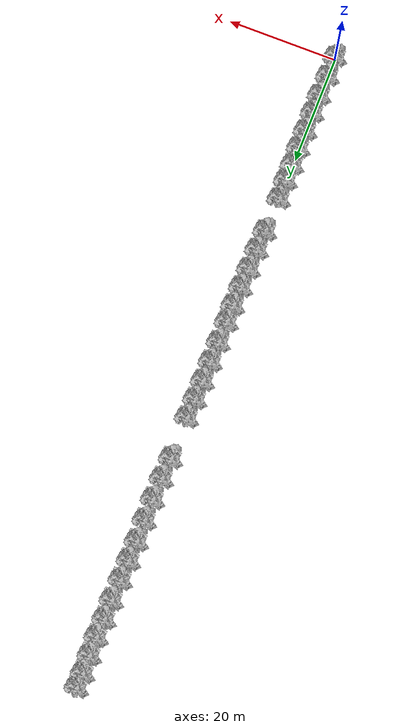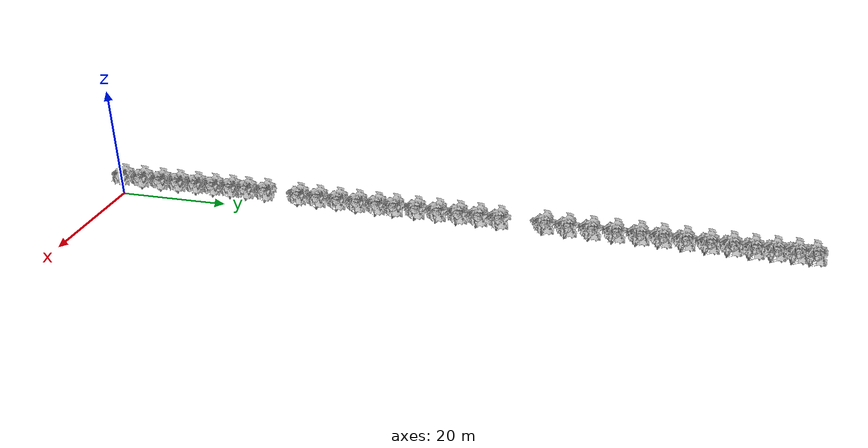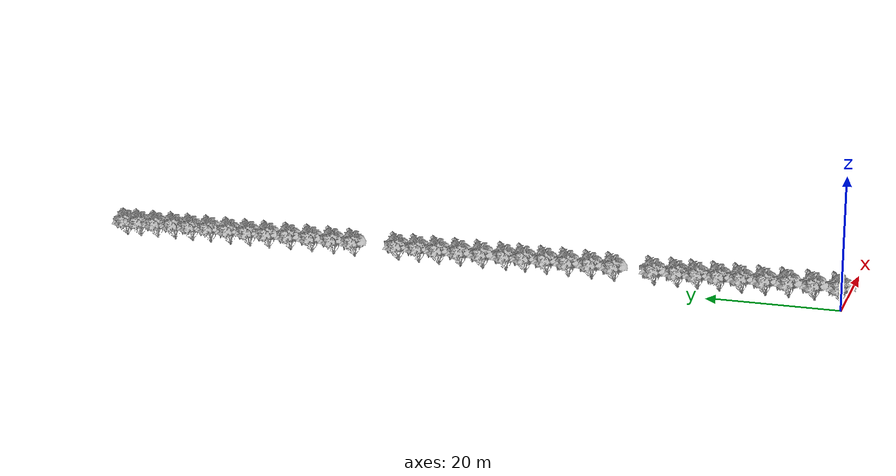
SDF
<?xml version='1.0'?>
<sdf version='1.7'>
  <model name='bush_pattern_2'>
    <model name='Bush 1'>
      <static>1</static>
      <pose>-0.018234 0.028595 1.265 1.57079 -0 0</pose>
      <link name='link'>
        <pose>0 0 0 0 -0 0</pose>
        <visual name='visual'>
          <geometry>
            <mesh>
              <scale>5 5 5</scale>
              <uri>model://bush_1/meshes/bush_1.obj</uri>
            </mesh>
          </geometry>
        </visual>
        <self_collide>0</self_collide>
        <enable_wind>0</enable_wind>
        <kinematic>0</kinematic>
      </link>
    </model>
    <model name='Bush 1_clone'>
      <static>1</static>
      <pose>-0.030731 3.84766 1.265 1.57079 -0 0</pose>
      <link name='link'>
        <pose>0 0 0 0 -0 0</pose>
        <visual name='visual'>
          <geometry>
            <mesh>
              <scale>5 5 5</scale>
              <uri>model://bush_1/meshes/bush_1.obj</uri>
            </mesh>
          </geometry>
        </visual>
        <self_collide>0</self_collide>
        <enable_wind>0</enable_wind>
        <kinematic>0</kinematic>
      </link>
    </model>
    <model name='Bush 1_clone_0'>
      <static>1</static>
      <pose>0.124741 7.66278 1.265 1.57079 -0 0</pose>
      <link name='link'>
        <pose>0 0 0 0 -0 0</pose>
        <visual name='visual'>
          <geometry>
            <mesh>
              <scale>5 5 5</scale>
              <uri>model://bush_1/meshes/bush_1.obj</uri>
            </mesh>
          </geometry>
        </visual>
        <self_collide>0</self_collide>
        <enable_wind>0</enable_wind>
        <kinematic>0</kinematic>
      </link>
    </model>
    <model name='Bush 1_clone_1'>
      <static>1</static>
      <pose>0.109695 11.1021 1.265 1.57079 -0 0</pose>
      <link name='link'>
        <pose>0 0 0 0 -0 0</pose>
        <visual name='visual'>
          <geometry>
            <mesh>
              <scale>5 5 5</scale>
              <uri>model://bush_1/meshes/bush_1.obj</uri>
            </mesh>
          </geometry>
        </visual>
        <self_collide>0</self_collide>
        <enable_wind>0</enable_wind>
        <kinematic>0</kinematic>
      </link>
    </model>
    <model name='Bush 1_clone_10'>
      <static>1</static>
      <pose>0.664261 44.982 1.265 1.57079 -0 0</pose>
      <link name='link'>
        <pose>0 0 0 0 -0 0</pose>
        <visual name='visual'>
          <geometry>
            <mesh>
              <scale>5 5 5</scale>
              <uri>model://bush_1/meshes/bush_1.obj</uri>
            </mesh>
          </geometry>
        </visual>
        <self_collide>0</self_collide>
        <enable_wind>0</enable_wind>
        <kinematic>0</kinematic>
      </link>
    </model>
    <model name='Bush 1_clone_11'>
      <static>1</static>
      <pose>0.760513 51.5874 1.265 1.57079 -0 0</pose>
      <link name='link'>
        <pose>0 0 0 0 -0 0</pose>
        <visual name='visual'>
          <geometry>
            <mesh>
              <scale>5 5 5</scale>
              <uri>model://bush_1/meshes/bush_1.obj</uri>
            </mesh>
          </geometry>
        </visual>
        <self_collide>0</self_collide>
        <enable_wind>0</enable_wind>
        <kinematic>0</kinematic>
      </link>
    </model>
    <model name='Bush 1_clone_11_clone'>
      <static>1</static>
      <pose>0.770248 48.4778 1.265 1.57079 -0 0</pose>
      <link name='link'>
        <pose>0 0 0 0 -0 0</pose>
        <visual name='visual'>
          <geometry>
            <mesh>
              <scale>5 5 5</scale>
              <uri>model://bush_1/meshes/bush_1.obj</uri>
            </mesh>
          </geometry>
        </visual>
        <self_collide>0</self_collide>
        <enable_wind>0</enable_wind>
        <kinematic>0</kinematic>
      </link>
    </model>
    <model name='Bush 1_clone_12'>
      <static>1</static>
      <pose>0.789597 55.4111 1.265 1.57079 -0 0</pose>
      <link name='link'>
        <pose>0 0 0 0 -0 0</pose>
        <visual name='visual'>
          <geometry>
            <mesh>
              <scale>5 5 5</scale>
              <uri>model://bush_1/meshes/bush_1.obj</uri>
            </mesh>
          </geometry>
        </visual>
        <self_collide>0</self_collide>
        <enable_wind>0</enable_wind>
        <kinematic>0</kinematic>
      </link>
    </model>
    <model name='Bush 1_clone_13'>
      <static>1</static>
      <pose>0.843613 59.118 1.265 1.57079 -0 0</pose>
      <link name='link'>
        <pose>0 0 0 0 -0 0</pose>
        <visual name='visual'>
          <geometry>
            <mesh>
              <scale>5 5 5</scale>
              <uri>model://bush_1/meshes/bush_1.obj</uri>
            </mesh>
          </geometry>
        </visual>
        <self_collide>0</self_collide>
        <enable_wind>0</enable_wind>
        <kinematic>0</kinematic>
      </link>
    </model>
    <model name='Bush 1_clone_14'>
      <static>1</static>
      <pose>0.885468 62.7091 1.265 1.57079 -0 0</pose>
      <link name='link'>
        <pose>0 0 0 0 -0 0</pose>
        <visual name='visual'>
          <geometry>
            <mesh>
              <scale>5 5 5</scale>
              <uri>model://bush_1/meshes/bush_1.obj</uri>
            </mesh>
          </geometry>
        </visual>
        <self_collide>0</self_collide>
        <enable_wind>0</enable_wind>
        <kinematic>0</kinematic>
      </link>
    </model>
    <model name='Bush 1_clone_15'>
      <static>1</static>
      <pose>0.973831 66.1406 1.265 1.57079 -0 0</pose>
      <link name='link'>
        <pose>0 0 0 0 -0 0</pose>
        <visual name='visual'>
          <geometry>
            <mesh>
              <scale>5 5 5</scale>
              <uri>model://bush_1/meshes/bush_1.obj</uri>
            </mesh>
          </geometry>
        </visual>
        <self_collide>0</self_collide>
        <enable_wind>0</enable_wind>
        <kinematic>0</kinematic>
      </link>
    </model>
    <model name='Bush 1_clone_16'>
      <static>1</static>
      <pose>1.12303 69.6395 1.265 1.57079 -0 0</pose>
      <link name='link'>
        <pose>0 0 0 0 -0 0</pose>
        <visual name='visual'>
          <geometry>
            <mesh>
              <scale>5 5 5</scale>
              <uri>model://bush_1/meshes/bush_1.obj</uri>
            </mesh>
          </geometry>
        </visual>
        <self_collide>0</self_collide>
        <enable_wind>0</enable_wind>
        <kinematic>0</kinematic>
      </link>
    </model>
    <model name='Bush 1_clone_17'>
      <static>1</static>
      <pose>1.33916 80.8873 1.265 1.57079 -0 0</pose>
      <link name='link'>
        <pose>0 0 0 0 -0 0</pose>
        <visual name='visual'>
          <geometry>
            <mesh>
              <scale>5 5 5</scale>
              <uri>model://bush_1/meshes/bush_1.obj</uri>
            </mesh>
          </geometry>
        </visual>
        <self_collide>0</self_collide>
        <enable_wind>0</enable_wind>
        <kinematic>0</kinematic>
      </link>
    </model>
    <model name='Bush 1_clone_17_clone'>
      <static>1</static>
      <pose>1.12502 77.1655 1.265 1.57079 -0 0</pose>
      <link name='link'>
        <pose>0 0 0 0 -0 0</pose>
        <visual name='visual'>
          <geometry>
            <mesh>
              <scale>5 5 5</scale>
              <uri>model://bush_1/meshes/bush_1.obj</uri>
            </mesh>
          </geometry>
        </visual>
        <self_collide>0</self_collide>
        <enable_wind>0</enable_wind>
        <kinematic>0</kinematic>
      </link>
    </model>
    <model name='Bush 1_clone_18'>
      <static>1</static>
      <pose>1.45213 84.7266 1.265 1.57079 -0 0</pose>
      <link name='link'>
        <pose>0 0 0 0 -0 0</pose>
        <visual name='visual'>
          <geometry>
            <mesh>
              <scale>5 5 5</scale>
              <uri>model://bush_1/meshes/bush_1.obj</uri>
            </mesh>
          </geometry>
        </visual>
        <self_collide>0</self_collide>
        <enable_wind>0</enable_wind>
        <kinematic>0</kinematic>
      </link>
    </model>
    <model name='Bush 1_clone_19'>
      <static>1</static>
      <pose>1.45967 88.5339 1.265 1.57079 -0 0</pose>
      <link name='link'>
        <pose>0 0 0 0 -0 0</pose>
        <visual name='visual'>
          <geometry>
            <mesh>
              <scale>5 5 5</scale>
              <uri>model://bush_1/meshes/bush_1.obj</uri>
            </mesh>
          </geometry>
        </visual>
        <self_collide>0</self_collide>
        <enable_wind>0</enable_wind>
        <kinematic>0</kinematic>
      </link>
    </model>
    <model name='Bush 1_clone_2'>
      <static>1</static>
      <pose>0.127762 14.6035 1.265 1.57079 -0 0</pose>
      <link name='link'>
        <pose>0 0 0 0 -0 0</pose>
        <visual name='visual'>
          <geometry>
            <mesh>
              <scale>5 5 5</scale>
              <uri>model://bush_1/meshes/bush_1.obj</uri>
            </mesh>
          </geometry>
        </visual>
        <self_collide>0</self_collide>
        <enable_wind>0</enable_wind>
        <kinematic>0</kinematic>
      </link>
    </model>
    <model name='Bush 1_clone_20'>
      <static>1</static>
      <pose>1.41695 92.3299 1.265 1.57079 -0 0</pose>
      <link name='link'>
        <pose>0 0 0 0 -0 0</pose>
        <visual name='visual'>
          <geometry>
            <mesh>
              <scale>5 5 5</scale>
              <uri>model://bush_1/meshes/bush_1.obj</uri>
            </mesh>
          </geometry>
        </visual>
        <self_collide>0</self_collide>
        <enable_wind>0</enable_wind>
        <kinematic>0</kinematic>
      </link>
    </model>
    <model name='Bush 1_clone_21'>
      <static>1</static>
      <pose>1.47617 95.8098 1.265 1.57079 -0 0</pose>
      <link name='link'>
        <pose>0 0 0 0 -0 0</pose>
        <visual name='visual'>
          <geometry>
            <mesh>
              <scale>5 5 5</scale>
              <uri>model://bush_1/meshes/bush_1.obj</uri>
            </mesh>
          </geometry>
        </visual>
        <self_collide>0</self_collide>
        <enable_wind>0</enable_wind>
        <kinematic>0</kinematic>
      </link>
    </model>
    <model name='Bush 1_clone_22'>
      <static>1</static>
      <pose>1.56519 99.354 1.265 1.57079 -0 0</pose>
      <link name='link'>
        <pose>0 0 0 0 -0 0</pose>
        <visual name='visual'>
          <geometry>
            <mesh>
              <scale>5 5 5</scale>
              <uri>model://bush_1/meshes/bush_1.obj</uri>
            </mesh>
          </geometry>
        </visual>
        <self_collide>0</self_collide>
        <enable_wind>0</enable_wind>
        <kinematic>0</kinematic>
      </link>
    </model>
    <model name='Bush 1_clone_23'>
      <static>1</static>
      <pose>1.70558 103.011 1.265 1.57079 -0 0</pose>
      <link name='link'>
        <pose>0 0 0 0 -0 0</pose>
        <visual name='visual'>
          <geometry>
            <mesh>
              <scale>5 5 5</scale>
              <uri>model://bush_1/meshes/bush_1.obj</uri>
            </mesh>
          </geometry>
        </visual>
        <self_collide>0</self_collide>
        <enable_wind>0</enable_wind>
        <kinematic>0</kinematic>
      </link>
    </model>
    <model name='Bush 1_clone_24'>
      <static>1</static>
      <pose>1.70424 106.39 1.265 1.57079 -0 0</pose>
      <link name='link'>
        <pose>0 0 0 0 -0 0</pose>
        <visual name='visual'>
          <geometry>
            <mesh>
              <scale>5 5 5</scale>
              <uri>model://bush_1/meshes/bush_1.obj</uri>
            </mesh>
          </geometry>
        </visual>
        <self_collide>0</self_collide>
        <enable_wind>0</enable_wind>
        <kinematic>0</kinematic>
      </link>
    </model>
    <model name='Bush 1_clone_25'>
      <static>1</static>
      <pose>1.84647 109.618 1.265 1.57079 -0 0</pose>
      <link name='link'>
        <pose>0 0 0 0 0 0</pose>
        <visual name='visual'>
          <geometry>
            <mesh>
              <scale>5 5 5</scale>
              <uri>model://bush_1/meshes/bush_1.obj</uri>
            </mesh>
          </geometry>
        </visual>
        <self_collide>0</self_collide>
        <enable_wind>0</enable_wind>
        <kinematic>0</kinematic>
      </link>
    </model>
    <model name='Bush 1_clone_26'>
      <static>1</static>
      <pose>1.77179 112.865 1.265 1.57079 -0 0</pose>
      <link name='link'>
        <pose>0 0 0 0 -0 0</pose>
        <visual name='visual'>
          <geometry>
            <mesh>
              <scale>5 5 5</scale>
              <uri>model://bush_1/meshes/bush_1.obj</uri>
            </mesh>
          </geometry>
        </visual>
        <self_collide>0</self_collide>
        <enable_wind>0</enable_wind>
        <kinematic>0</kinematic>
      </link>
    </model>
    <model name='Bush 1_clone_27'>
      <static>1</static>
      <pose>1.7337 115.998 1.265 1.57079 -0 0</pose>
      <link name='link'>
        <pose>0 0 0 0 0 0</pose>
        <visual name='visual'>
          <geometry>
            <mesh>
              <scale>5 5 5</scale>
              <uri>model://bush_1/meshes/bush_1.obj</uri>
            </mesh>
          </geometry>
        </visual>
        <self_collide>0</self_collide>
        <enable_wind>0</enable_wind>
        <kinematic>0</kinematic>
      </link>
    </model>
    <model name='Bush 1_clone_27_clone'>
      <static>1</static>
      <pose>1.81544 118.58 1.265 1.57079 -0 0</pose>
      <link name='link'>
        <pose>0 0 0 0 -0 0</pose>
        <visual name='visual'>
          <geometry>
            <mesh>
              <scale>5 5 5</scale>
              <uri>model://bush_1/meshes/bush_1.obj</uri>
            </mesh>
          </geometry>
        </visual>
        <self_collide>0</self_collide>
        <enable_wind>0</enable_wind>
        <kinematic>0</kinematic>
      </link>
    </model>
    <model name='Bush 1_clone_3'>
      <static>1</static>
      <pose>0.175934 17.9709 1.265 1.57079 -0 0</pose>
      <link name='link'>
        <pose>0 0 0 0 -0 0</pose>
        <visual name='visual'>
          <geometry>
            <mesh>
              <scale>5 5 5</scale>
              <uri>model://bush_1/meshes/bush_1.obj</uri>
            </mesh>
          </geometry>
        </visual>
        <self_collide>0</self_collide>
        <enable_wind>0</enable_wind>
        <kinematic>0</kinematic>
      </link>
    </model>
    <model name='Bush 1_clone_4'>
      <static>1</static>
      <pose>0.106216 21.2763 1.265 1.57079 -0 0</pose>
      <link name='link'>
        <pose>0 0 0 0 -0 0</pose>
        <visual name='visual'>
          <geometry>
            <mesh>
              <scale>5 5 5</scale>
              <uri>model://bush_1/meshes/bush_1.obj</uri>
            </mesh>
          </geometry>
        </visual>
        <self_collide>0</self_collide>
        <enable_wind>0</enable_wind>
        <kinematic>0</kinematic>
      </link>
    </model>
    <model name='Bush 1_clone_5'>
      <static>1</static>
      <pose>0.165497 24.3127 1.265 1.57079 -0 0</pose>
      <link name='link'>
        <pose>0 0 0 0 -0 0</pose>
        <visual name='visual'>
          <geometry>
            <mesh>
              <scale>5 5 5</scale>
              <uri>model://bush_1/meshes/bush_1.obj</uri>
            </mesh>
          </geometry>
        </visual>
        <self_collide>0</self_collide>
        <enable_wind>0</enable_wind>
        <kinematic>0</kinematic>
      </link>
    </model>
    <model name='Bush 1_clone_6'>
      <static>1</static>
      <pose>0.090378 27.8844 1.265 1.57079 -0 0</pose>
      <link name='link'>
        <pose>0 0 0 0 -0 0</pose>
        <visual name='visual'>
          <geometry>
            <mesh>
              <scale>5 5 5</scale>
              <uri>model://bush_1/meshes/bush_1.obj</uri>
            </mesh>
          </geometry>
        </visual>
        <self_collide>0</self_collide>
        <enable_wind>0</enable_wind>
        <kinematic>0</kinematic>
      </link>
    </model>
    <model name='Bush 1_clone_7'>
      <static>1</static>
      <pose>0.293884 34.1578 1.265 1.57079 -0 0</pose>
      <link name='link'>
        <pose>0 0 0 0 -0 0</pose>
        <visual name='visual'>
          <geometry>
            <mesh>
              <scale>5 5 5</scale>
              <uri>model://bush_1/meshes/bush_1.obj</uri>
            </mesh>
          </geometry>
        </visual>
        <self_collide>0</self_collide>
        <enable_wind>0</enable_wind>
        <kinematic>0</kinematic>
      </link>
    </model>
    <model name='Bush 1_clone_8'>
      <static>1</static>
      <pose>0.453812 37.7596 1.265 1.57079 -0 0</pose>
      <link name='link'>
        <pose>0 0 0 0 -0 0</pose>
        <visual name='visual'>
          <geometry>
            <mesh>
              <scale>5 5 5</scale>
              <uri>model://bush_1/meshes/bush_1.obj</uri>
            </mesh>
          </geometry>
        </visual>
        <self_collide>0</self_collide>
        <enable_wind>0</enable_wind>
        <kinematic>0</kinematic>
      </link>
    </model>
    <model name='Bush 1_clone_9'>
      <static>1</static>
      <pose>0.543076 41.4486 1.265 1.57079 -0 0</pose>
      <link name='link'>
        <pose>0 0 0 0 -0 0</pose>
        <visual name='visual'>
          <geometry>
            <mesh>
              <scale>5 5 5</scale>
              <uri>model://bush_1/meshes/bush_1.obj</uri>
            </mesh>
          </geometry>
        </visual>
        <self_collide>0</self_collide>
        <enable_wind>0</enable_wind>
        <kinematic>0</kinematic>
      </link>
    </model>
    <static>0</static>
    <allow_auto_disable>1</allow_auto_disable>
  </model>
</sdf>
